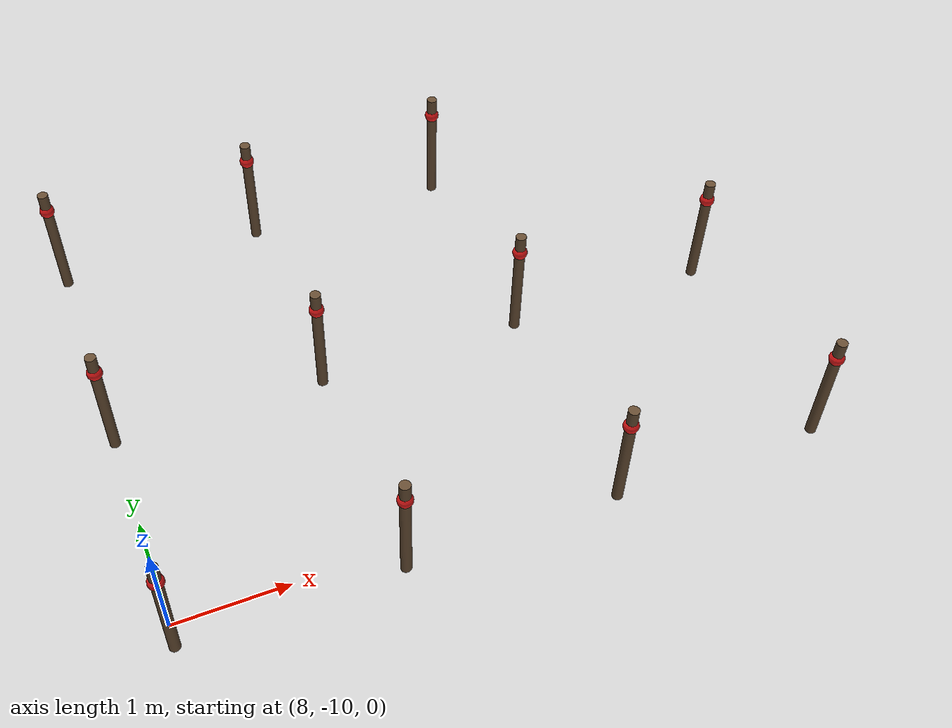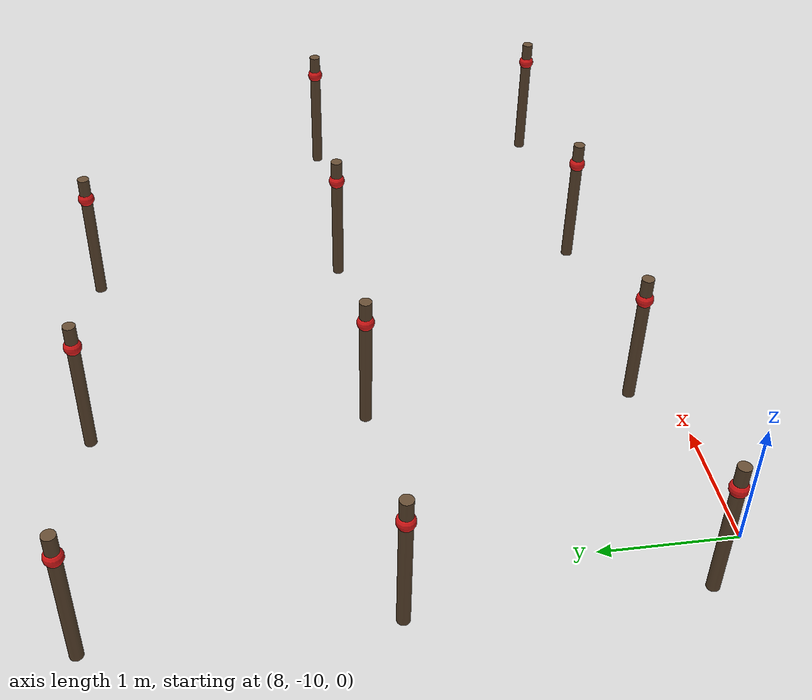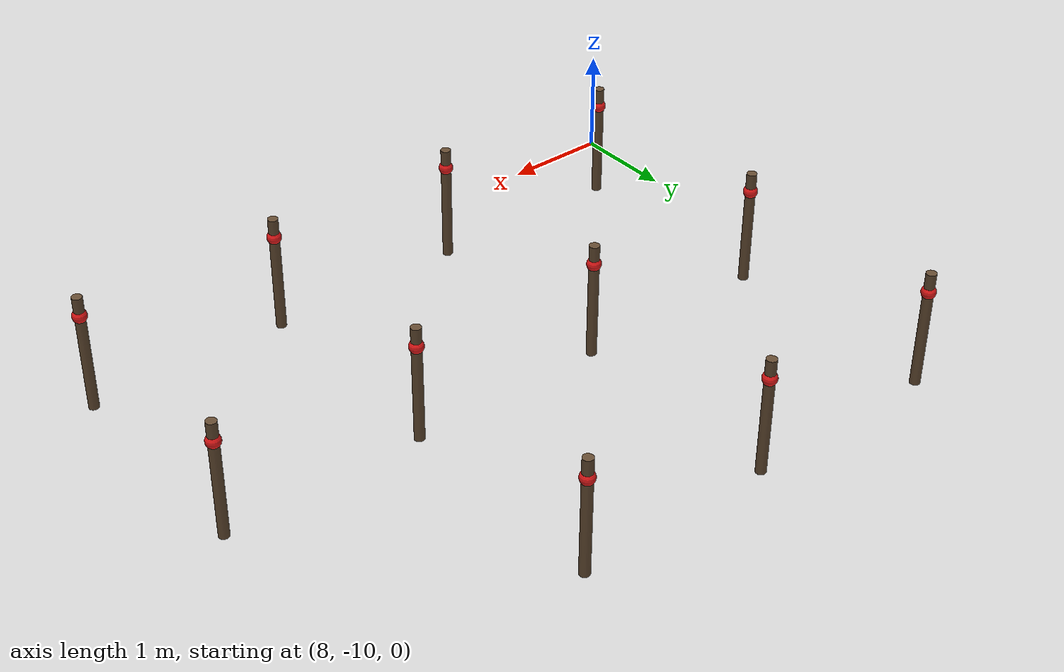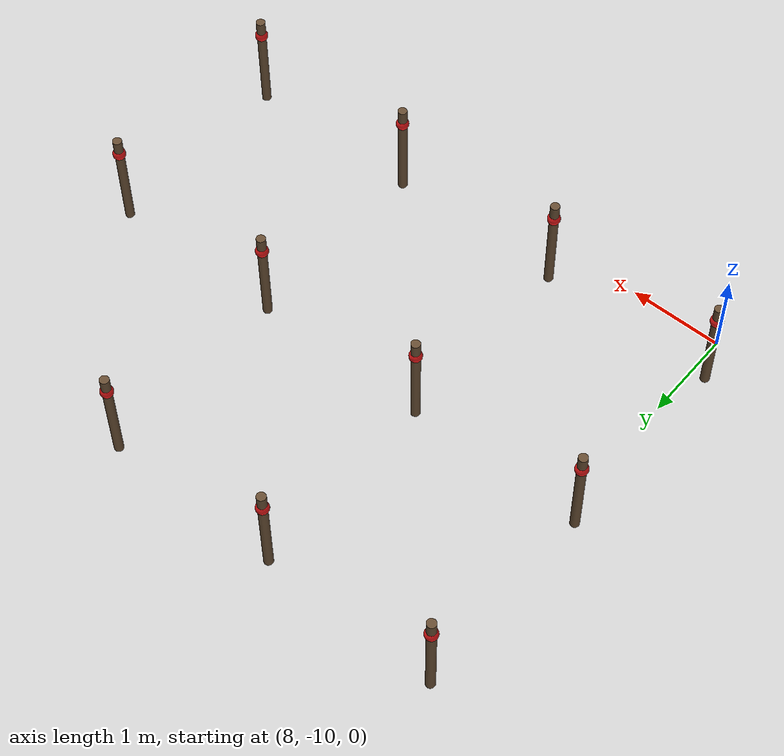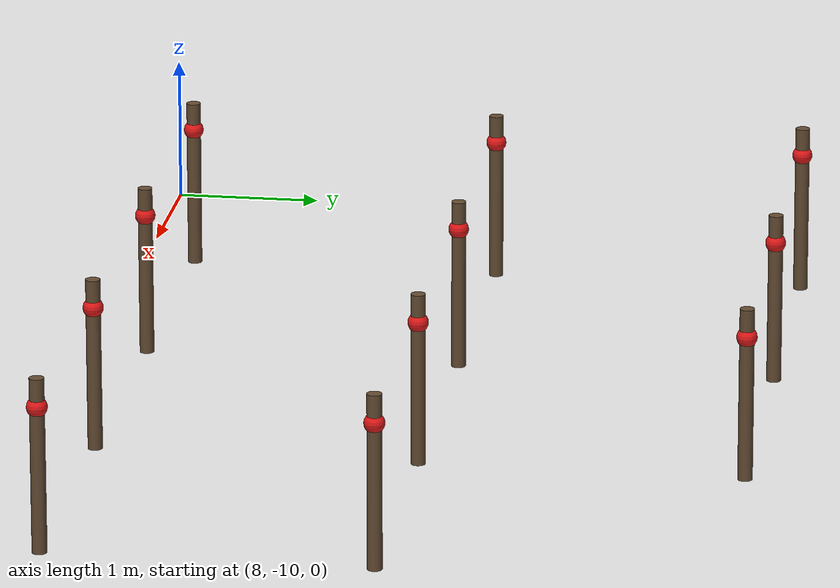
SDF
<sdf version="1.9">
 <world name="empty">
  <model name="row_minus4_post_4">
   <static>true</static>
   <pose>8 -5.5 -0.5 0 0 0</pose>
   <link name="vine_link">
    <collision name="post_collision">
     <geometry><cylinder><radius>0.05</radius><length>1.2</length></cylinder></geometry>
     <pose>0 0 0.6 0 0 0</pose>
    </collision>
    <visual name="post_visual">
     <geometry><cylinder><radius>0.05</radius><length>1.2</length></cylinder></geometry>
     <pose>0 0 0.6 0 0 0</pose>
     <material><diffuse>0.4 0.3 0.2 1</diffuse><ambient>0.4 0.3 0.2 1</ambient></material>
    </visual>
    <collision name="ball_collision">
     <geometry><sphere><radius>0.07</radius></sphere></geometry>
     <pose>0 0 1.0 0 0 0</pose>
    </collision>
    <visual name="ball_visual">
     <geometry><sphere><radius>0.07</radius></sphere></geometry>
     <pose>0 0 1.0 0 0 0</pose>
     <material><diffuse>0.9 0.1 0.1 1</diffuse><ambient>0.9 0.1 0.1 1</ambient></material>
    </visual>
   </link>
  </model>
  <model name="row_minus4_post_5">
   <static>true</static>
   <pose>10 -5.5 -0.5 0 0 0</pose>
   <link name="vine_link">
    <collision name="post_collision">
     <geometry><cylinder><radius>0.05</radius><length>1.2</length></cylinder></geometry>
     <pose>0 0 0.6 0 0 0</pose>
    </collision>
    <visual name="post_visual">
     <geometry><cylinder><radius>0.05</radius><length>1.2</length></cylinder></geometry>
     <pose>0 0 0.6 0 0 0</pose>
     <material><diffuse>0.4 0.3 0.2 1</diffuse><ambient>0.4 0.3 0.2 1</ambient></material>
    </visual>
    <collision name="ball_collision">
     <geometry><sphere><radius>0.07</radius></sphere></geometry>
     <pose>0 0 1.0 0 0 0</pose>
    </collision>
    <visual name="ball_visual">
     <geometry><sphere><radius>0.07</radius></sphere></geometry>
     <pose>0 0 1.0 0 0 0</pose>
     <material><diffuse>0.9 0.1 0.1 1</diffuse><ambient>0.9 0.1 0.1 1</ambient></material>
    </visual>
   </link>
  </model>
  <model name="row_minus4_post_6">
   <static>true</static>
   <pose>12 -5.5 -0.5 0 0 0</pose>
   <link name="vine_link">
    <collision name="post_collision">
     <geometry><cylinder><radius>0.05</radius><length>1.2</length></cylinder></geometry>
     <pose>0 0 0.6 0 0 0</pose>
    </collision>
    <visual name="post_visual">
     <geometry><cylinder><radius>0.05</radius><length>1.2</length></cylinder></geometry>
     <pose>0 0 0.6 0 0 0</pose>
     <material><diffuse>0.4 0.3 0.2 1</diffuse><ambient>0.4 0.3 0.2 1</ambient></material>
    </visual>
    <collision name="ball_collision">
     <geometry><sphere><radius>0.07</radius></sphere></geometry>
     <pose>0 0 1.0 0 0 0</pose>
    </collision>
    <visual name="ball_visual">
     <geometry><sphere><radius>0.07</radius></sphere></geometry>
     <pose>0 0 1.0 0 0 0</pose>
     <material><diffuse>0.9 0.1 0.1 1</diffuse><ambient>0.9 0.1 0.1 1</ambient></material>
    </visual>
   </link>
  </model>
  <model name="row_minus5_post_4">
   <static>true</static>
   <pose>8 -7.7 -0.5 0 0 0</pose>
   <link name="vine_link">
    <collision name="post_collision">
     <geometry><cylinder><radius>0.05</radius><length>1.2</length></cylinder></geometry>
     <pose>0 0 0.6 0 0 0</pose>
    </collision>
    <visual name="post_visual">
     <geometry><cylinder><radius>0.05</radius><length>1.2</length></cylinder></geometry>
     <pose>0 0 0.6 0 0 0</pose>
     <material><diffuse>0.4 0.3 0.2 1</diffuse><ambient>0.4 0.3 0.2 1</ambient></material>
    </visual>
    <collision name="ball_collision">
     <geometry><sphere><radius>0.07</radius></sphere></geometry>
     <pose>0 0 1.0 0 0 0</pose>
    </collision>
    <visual name="ball_visual">
     <geometry><sphere><radius>0.07</radius></sphere></geometry>
     <pose>0 0 1.0 0 0 0</pose>
     <material><diffuse>0.9 0.1 0.1 1</diffuse><ambient>0.9 0.1 0.1 1</ambient></material>
    </visual>
   </link>
  </model>
  <model name="row_minus5_post_5">
   <static>true</static>
   <pose>10 -7.7 -0.5 0 0 0</pose>
   <link name="vine_link">
    <collision name="post_collision">
     <geometry><cylinder><radius>0.05</radius><length>1.2</length></cylinder></geometry>
     <pose>0 0 0.6 0 0 0</pose>
    </collision>
    <visual name="post_visual">
     <geometry><cylinder><radius>0.05</radius><length>1.2</length></cylinder></geometry>
     <pose>0 0 0.6 0 0 0</pose>
     <material><diffuse>0.4 0.3 0.2 1</diffuse><ambient>0.4 0.3 0.2 1</ambient></material>
    </visual>
    <collision name="ball_collision">
     <geometry><sphere><radius>0.07</radius></sphere></geometry>
     <pose>0 0 1.0 0 0 0</pose>
    </collision>
    <visual name="ball_visual">
     <geometry><sphere><radius>0.07</radius></sphere></geometry>
     <pose>0 0 1.0 0 0 0</pose>
     <material><diffuse>0.9 0.1 0.1 1</diffuse><ambient>0.9 0.1 0.1 1</ambient></material>
    </visual>
   </link>
  </model>
  <model name="row_minus5_post_6">
   <static>true</static>
   <pose>12 -7.7 -0.5 0 0 0</pose>
   <link name="vine_link">
    <collision name="post_collision">
     <geometry><cylinder><radius>0.05</radius><length>1.2</length></cylinder></geometry>
     <pose>0 0 0.6 0 0 0</pose>
    </collision>
    <visual name="post_visual">
     <geometry><cylinder><radius>0.05</radius><length>1.2</length></cylinder></geometry>
     <pose>0 0 0.6 0 0 0</pose>
     <material><diffuse>0.4 0.3 0.2 1</diffuse><ambient>0.4 0.3 0.2 1</ambient></material>
    </visual>
    <collision name="ball_collision">
     <geometry><sphere><radius>0.07</radius></sphere></geometry>
     <pose>0 0 1.0 0 0 0</pose>
    </collision>
    <visual name="ball_visual">
     <geometry><sphere><radius>0.07</radius></sphere></geometry>
     <pose>0 0 1.0 0 0 0</pose>
     <material><diffuse>0.9 0.1 0.1 1</diffuse><ambient>0.9 0.1 0.1 1</ambient></material>
    </visual>
   </link>
  </model>
  <model name="row_minus5_post_7">
   <static>true</static>
   <pose>14 -7.7 -0.5 0 0 0</pose>
   <link name="vine_link">
    <collision name="post_collision">
     <geometry><cylinder><radius>0.05</radius><length>1.2</length></cylinder></geometry>
     <pose>0 0 0.6 0 0 0</pose>
    </collision>
    <visual name="post_visual">
     <geometry><cylinder><radius>0.05</radius><length>1.2</length></cylinder></geometry>
     <pose>0 0 0.6 0 0 0</pose>
     <material><diffuse>0.4 0.3 0.2 1</diffuse><ambient>0.4 0.3 0.2 1</ambient></material>
    </visual>
    <collision name="ball_collision">
     <geometry><sphere><radius>0.07</radius></sphere></geometry>
     <pose>0 0 1.0 0 0 0</pose>
    </collision>
    <visual name="ball_visual">
     <geometry><sphere><radius>0.07</radius></sphere></geometry>
     <pose>0 0 1.0 0 0 0</pose>
     <material><diffuse>0.9 0.1 0.1 1</diffuse><ambient>0.9 0.1 0.1 1</ambient></material>
    </visual>
   </link>
  </model>
  <model name="row_minus6_post_4">
   <static>true</static>
   <pose>8 -9.9 -0.5 0 0 0</pose>
   <link name="vine_link">
    <collision name="post_collision">
     <geometry><cylinder><radius>0.05</radius><length>1.2</length></cylinder></geometry>
     <pose>0 0 0.6 0 0 0</pose>
    </collision>
    <visual name="post_visual">
     <geometry><cylinder><radius>0.05</radius><length>1.2</length></cylinder></geometry>
     <pose>0 0 0.6 0 0 0</pose>
     <material><diffuse>0.4 0.3 0.2 1</diffuse><ambient>0.4 0.3 0.2 1</ambient></material>
    </visual>
    <collision name="ball_collision">
     <geometry><sphere><radius>0.07</radius></sphere></geometry>
     <pose>0 0 1.0 0 0 0</pose>
    </collision>
    <visual name="ball_visual">
     <geometry><sphere><radius>0.07</radius></sphere></geometry>
     <pose>0 0 1.0 0 0 0</pose>
     <material><diffuse>0.9 0.1 0.1 1</diffuse><ambient>0.9 0.1 0.1 1</ambient></material>
    </visual>
   </link>
  </model>
  <model name="row_minus6_post_5">
   <static>true</static>
   <pose>10 -9.9 -0.5 0 0 0</pose>
   <link name="vine_link">
    <collision name="post_collision">
     <geometry><cylinder><radius>0.05</radius><length>1.2</length></cylinder></geometry>
     <pose>0 0 0.6 0 0 0</pose>
    </collision>
    <visual name="post_visual">
     <geometry><cylinder><radius>0.05</radius><length>1.2</length></cylinder></geometry>
     <pose>0 0 0.6 0 0 0</pose>
     <material><diffuse>0.4 0.3 0.2 1</diffuse><ambient>0.4 0.3 0.2 1</ambient></material>
    </visual>
    <collision name="ball_collision">
     <geometry><sphere><radius>0.07</radius></sphere></geometry>
     <pose>0 0 1.0 0 0 0</pose>
    </collision>
    <visual name="ball_visual">
     <geometry><sphere><radius>0.07</radius></sphere></geometry>
     <pose>0 0 1.0 0 0 0</pose>
     <material><diffuse>0.9 0.1 0.1 1</diffuse><ambient>0.9 0.1 0.1 1</ambient></material>
    </visual>
   </link>
  </model>
  <model name="row_minus6_post_6">
   <static>true</static>
   <pose>12 -9.9 -0.5 0 0 0</pose>
   <link name="vine_link">
    <collision name="post_collision">
     <geometry><cylinder><radius>0.05</radius><length>1.2</length></cylinder></geometry>
     <pose>0 0 0.6 0 0 0</pose>
    </collision>
    <visual name="post_visual">
     <geometry><cylinder><radius>0.05</radius><length>1.2</length></cylinder></geometry>
     <pose>0 0 0.6 0 0 0</pose>
     <material><diffuse>0.4 0.3 0.2 1</diffuse><ambient>0.4 0.3 0.2 1</ambient></material>
    </visual>
    <collision name="ball_collision">
     <geometry><sphere><radius>0.07</radius></sphere></geometry>
     <pose>0 0 1.0 0 0 0</pose>
    </collision>
    <visual name="ball_visual">
     <geometry><sphere><radius>0.07</radius></sphere></geometry>
     <pose>0 0 1.0 0 0 0</pose>
     <material><diffuse>0.9 0.1 0.1 1</diffuse><ambient>0.9 0.1 0.1 1</ambient></material>
    </visual>
   </link>
  </model>
  <model name="row_minus6_post_7">
   <static>true</static>
   <pose>14 -9.9 -0.5 0 0 0</pose>
   <link name="vine_link">
    <collision name="post_collision">
     <geometry><cylinder><radius>0.05</radius><length>1.2</length></cylinder></geometry>
     <pose>0 0 0.6 0 0 0</pose>
    </collision>
    <visual name="post_visual">
     <geometry><cylinder><radius>0.05</radius><length>1.2</length></cylinder></geometry>
     <pose>0 0 0.6 0 0 0</pose>
     <material><diffuse>0.4 0.3 0.2 1</diffuse><ambient>0.4 0.3 0.2 1</ambient></material>
    </visual>
    <collision name="ball_collision">
     <geometry><sphere><radius>0.07</radius></sphere></geometry>
     <pose>0 0 1.0 0 0 0</pose>
    </collision>
    <visual name="ball_visual">
     <geometry><sphere><radius>0.07</radius></sphere></geometry>
     <pose>0 0 1.0 0 0 0</pose>
     <material><diffuse>0.9 0.1 0.1 1</diffuse><ambient>0.9 0.1 0.1 1</ambient></material>
    </visual>
   </link>
  </model>
 </world>
</sdf>
